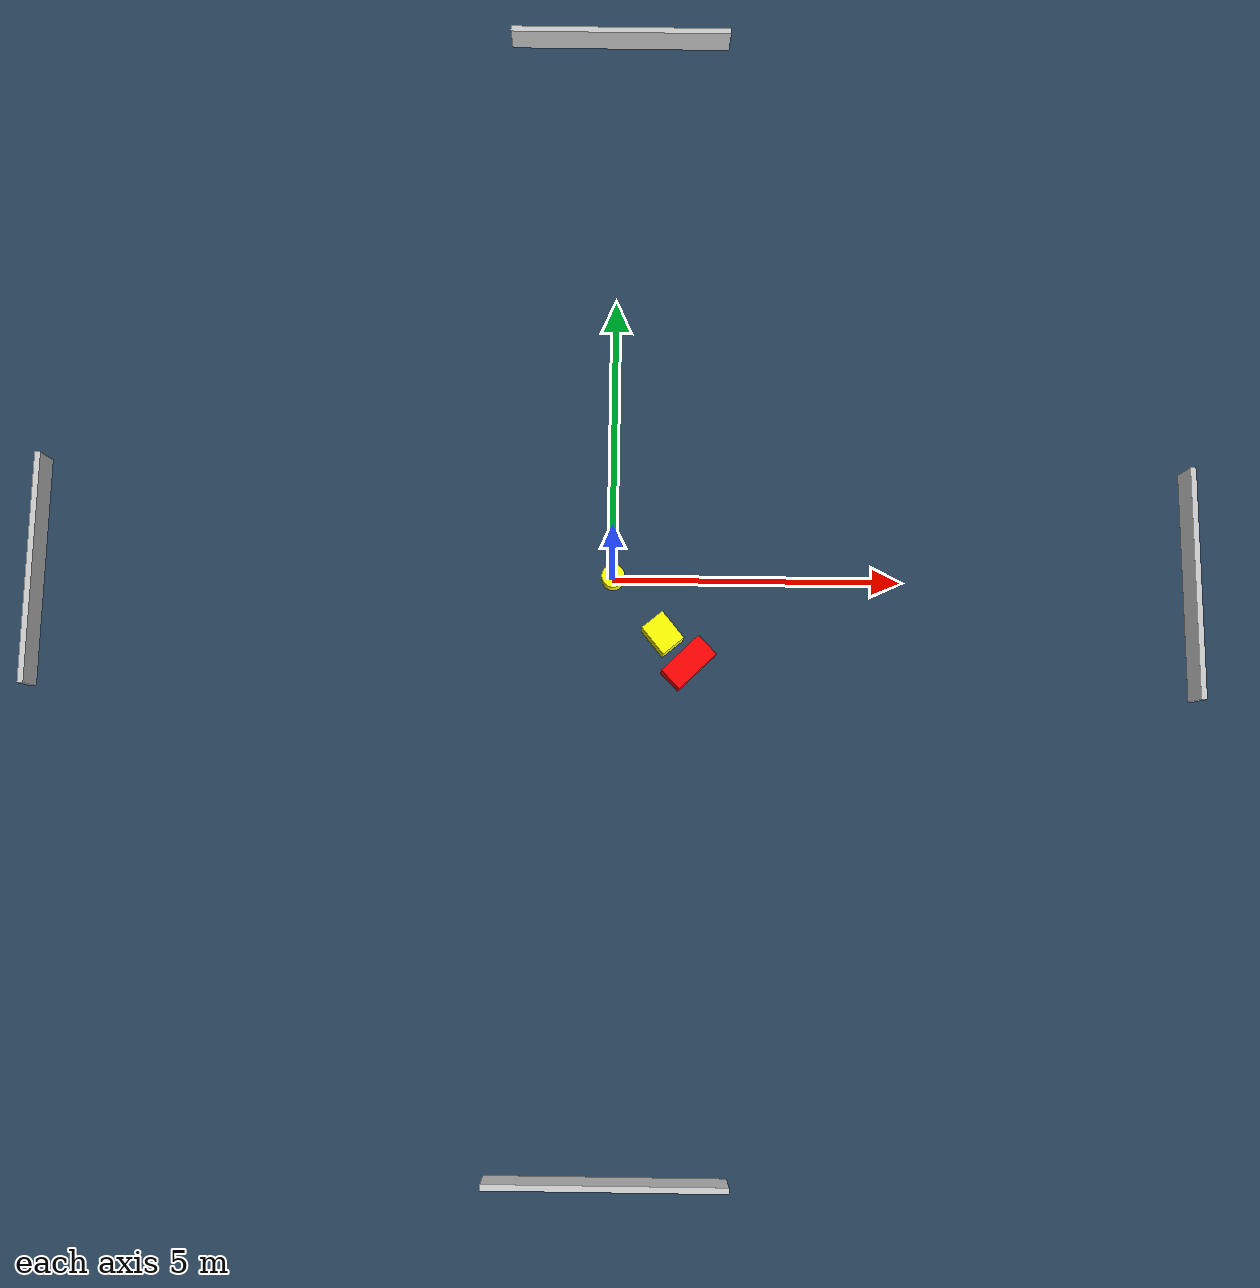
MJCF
<?xml version="1.0" ?>
<mujoco model="generated_environment">
  <option timestep="0.01" integrator="RK4" cone="elliptic"/>
  <default>
    <geom density="1"/>
  </default>
  <asset>
    <texture builtin="gradient" height="3072" name="skybox" rgb1="0.3 0.5 0.7" rgb2="0 0 0" type="skybox" width="512"/>
    <texture builtin="checker" height="300" name="groundplane" rgb1="0.2 0.3 0.4" rgb2="0.1 0.2 0.3" type="2d" width="300"/>
    <material name="groundplane" reflectance="0.2" texrepeat="5 5" texture="groundplane"/>
  </asset>
  <worldbody>
    <light dir="0 0 -1" directional="true" pos="0 0 1.5"/>
    <geom condim="3" friction="0.5 0.005 0.001" material="groundplane" name="floor" pos="0 0 0" size="0 0 0.05" type="plane"/>
    <body name="walls">
      <geom name="wall_1" condim="4" pos="-10.0 0.0 0.3" rgba="0.800000011920929 0.800000011920929 0.800000011920929 1.0" size="0.05 2.0 0.3" type="box"/>
      <geom name="wall_2" condim="4" pos="10.0 0.0 0.3" rgba="0.800000011920929 0.800000011920929 0.800000011920929 1.0" size="0.05 2.0 0.3" type="box"/>
      <geom name="wall_3" condim="4" pos="0.0 -10.0 0.3" rgba="0.800000011920929 0.800000011920929 0.800000011920929 1.0" size="2.0 0.05 0.3" type="box"/>
      <geom name="wall_4" condim="4" pos="0.0 10.0 0.3" rgba="0.800000011920929 0.800000011920929 0.800000011920929 1.0" size="2.0 0.05 0.3" type="box"/>
    </body>
    <body name="robot">
      <joint name="joint_x" type="slide" pos="0 0 0" axis="1 0 0"/>
      <joint name="joint_y" type="slide" pos="0 0 0" axis="0 1 0"/>
      <geom name="robot" type="cylinder" pos="0.0 0.0 0.2" size="0.2 0.2 0.0" mass="5.0" friction="1.0 0.005 0.0001" condim="4" rgba="1.0 1.0 0.0 1.0"/>
    </body>
    <body name="obstacle_1_movable">
      <geom name="obstacle_1_movable" condim="4" pos="0.8577632833646257 -0.996097661933456 0.3" euler="0 0 129.38119670892382" friction="0.0 0.005 0.001" rgba="1.0 1.0 0.0 1.0" size="0.2916028546149209 0.22616169884616247 0.3" type="box" mass="0.1"/>
      <joint type="free"/>
    </body>
    <body name="obstacle_2_static">
      <geom name="obstacle_2_static" condim="4" pos="1.3050455051636543 -1.4914902593806048 0.3" euler="0 0 43.9108827077332" friction="0.0 0.005 0.001" rgba="1.0 0.0 0.0 1.0" size="0.4356054423652167 0.2187539106257974 0.3" type="box"/>
    </body>
  </worldbody>
  <actuator>
    <motor name="actuator_x" joint="joint_x" gear="1" ctrlrange="-1 1"/>
    <motor name="actuator_y" joint="joint_y" gear="1" ctrlrange="-1 1"/>
  </actuator>
</mujoco>
